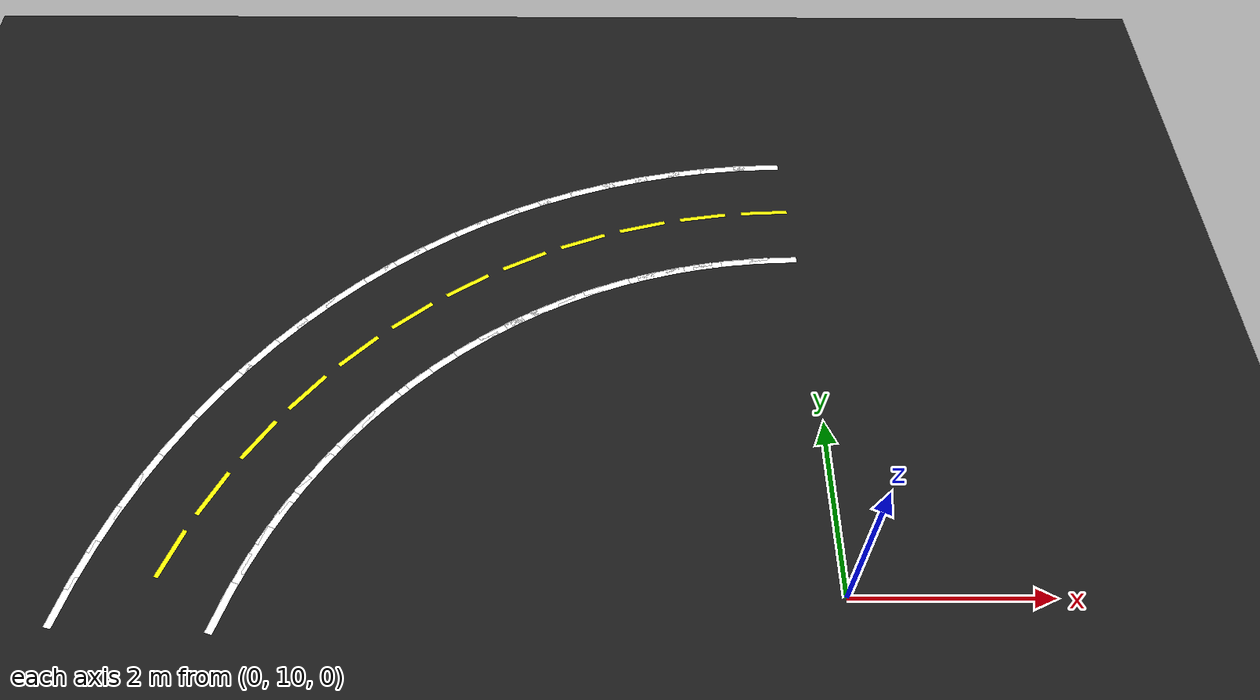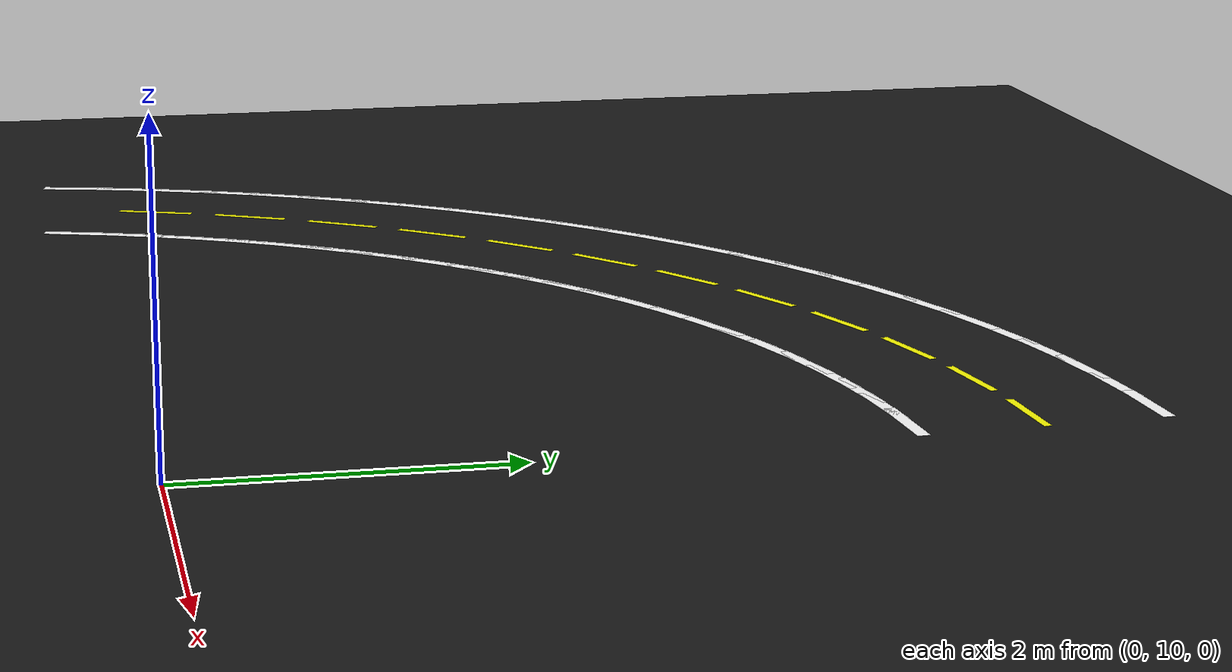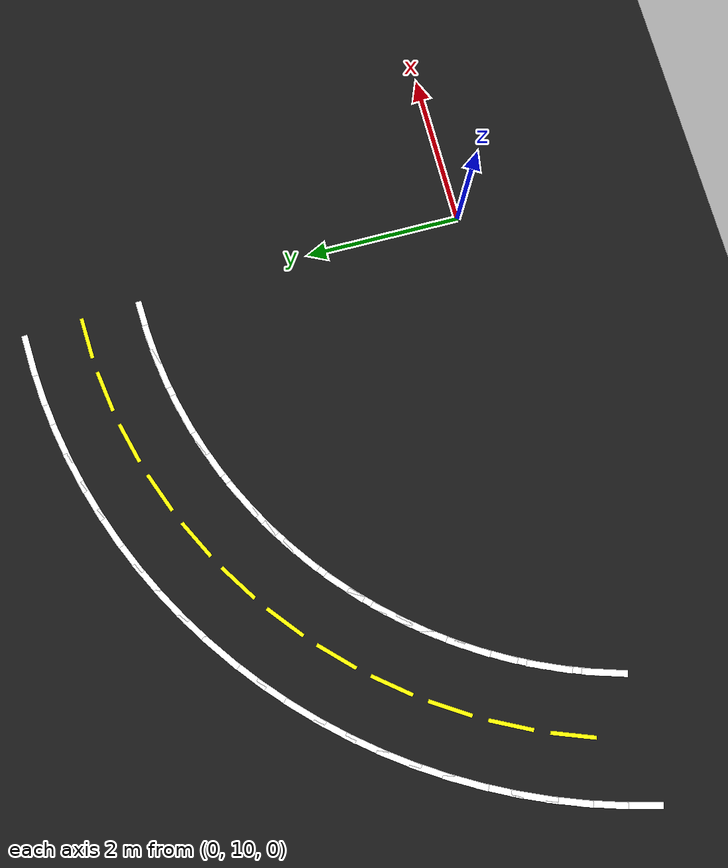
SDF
<sdf version="1.6">
 <world name="lane_world">
  <model name="ground">
   <static>true</static>
   <link name="link">
    <visual name="v">
     <geometry><plane><normal>0 0 1</normal><size>80 80</size></plane></geometry>
     <material><ambient>0.10 0.10 0.10 1</ambient><diffuse>0.10 0.10 0.10 1</diffuse></material>
    </visual>
    <collision name="c"><geometry><plane><normal>0 0 1</normal><size>80 80</size></plane></geometry></collision>
   </link>
  </model>
  <model name="seg_0150">
   <static>true</static>
   <pose>-0.4090 15.7392 0.002 0 0 0.0528</pose>
   <link name="link">
    <visual name="v">
     <geometry><box><size>0.550 0.080 0.0020</size></box></geometry>
     <material><ambient>1 1 1 1</ambient><diffuse>1 1 1 1</diffuse></material>
    </visual>
   </link>
  </model>
  <model name="seg_0151">
   <static>true</static>
   <pose>-0.3298 14.2413 0.002 0 0 0.0528</pose>
   <link name="link">
    <visual name="v">
     <geometry><box><size>0.550 0.080 0.0020</size></box></geometry>
     <material><ambient>1 1 1 1</ambient><diffuse>1 1 1 1</diffuse></material>
    </visual>
   </link>
  </model>
  <model name="seg_0152">
   <static>true</static>
   <pose>-0.3694 14.9902 0.002 0 0 0.0528</pose>
   <link name="link">
    <visual name="v">
     <geometry><box><size>0.550 0.05 0.0020</size></box></geometry>
     <material><ambient>1 1 0 1</ambient><diffuse>1 1 0 1</diffuse></material>
    </visual>
   </link>
  </model>
  <model name="seg_0153">
   <static>true</static>
   <pose>-0.8169 15.7068 0.002 0 0 0.1056</pose>
   <link name="link">
    <visual name="v">
     <geometry><box><size>0.550 0.080 0.0020</size></box></geometry>
     <material><ambient>1 1 1 1</ambient><diffuse>1 1 1 1</diffuse></material>
    </visual>
   </link>
  </model>
  <model name="seg_0154">
   <static>true</static>
   <pose>-0.6588 14.2152 0.002 0 0 0.1056</pose>
   <link name="link">
    <visual name="v">
     <geometry><box><size>0.550 0.080 0.0020</size></box></geometry>
     <material><ambient>1 1 1 1</ambient><diffuse>1 1 1 1</diffuse></material>
    </visual>
   </link>
  </model>
  <model name="seg_0155">
   <static>true</static>
   <pose>-1.2225 15.6530 0.002 0 0 0.1584</pose>
   <link name="link">
    <visual name="v">
     <geometry><box><size>0.550 0.080 0.0020</size></box></geometry>
     <material><ambient>1 1 1 1</ambient><diffuse>1 1 1 1</diffuse></material>
    </visual>
   </link>
  </model>
  <model name="seg_0156">
   <static>true</static>
   <pose>-0.9859 14.1718 0.002 0 0 0.1584</pose>
   <link name="link">
    <visual name="v">
     <geometry><box><size>0.550 0.080 0.0020</size></box></geometry>
     <material><ambient>1 1 1 1</ambient><diffuse>1 1 1 1</diffuse></material>
    </visual>
   </link>
  </model>
  <model name="seg_0157">
   <static>true</static>
   <pose>-1.1042 14.9124 0.002 0 0 0.1584</pose>
   <link name="link">
    <visual name="v">
     <geometry><box><size>0.550 0.05 0.0020</size></box></geometry>
     <material><ambient>1 1 0 1</ambient><diffuse>1 1 0 1</diffuse></material>
    </visual>
   </link>
  </model>
  <model name="seg_0158">
   <static>true</static>
   <pose>-1.6247 15.5778 0.002 0 0 0.2112</pose>
   <link name="link">
    <visual name="v">
     <geometry><box><size>0.550 0.080 0.0020</size></box></geometry>
     <material><ambient>1 1 1 1</ambient><diffuse>1 1 1 1</diffuse></material>
    </visual>
   </link>
  </model>
  <model name="seg_0159">
   <static>true</static>
   <pose>-1.3102 14.1111 0.002 0 0 0.2112</pose>
   <link name="link">
    <visual name="v">
     <geometry><box><size>0.550 0.080 0.0020</size></box></geometry>
     <material><ambient>1 1 1 1</ambient><diffuse>1 1 1 1</diffuse></material>
    </visual>
   </link>
  </model>
  <model name="seg_0160">
   <static>true</static>
   <pose>-2.0223 15.4815 0.002 0 0 0.2640</pose>
   <link name="link">
    <visual name="v">
     <geometry><box><size>0.550 0.080 0.0020</size></box></geometry>
     <material><ambient>1 1 1 1</ambient><diffuse>1 1 1 1</diffuse></material>
    </visual>
   </link>
  </model>
  <model name="seg_0161">
   <static>true</static>
   <pose>-1.6309 14.0335 0.002 0 0 0.2640</pose>
   <link name="link">
    <visual name="v">
     <geometry><box><size>0.550 0.080 0.0020</size></box></geometry>
     <material><ambient>1 1 1 1</ambient><diffuse>1 1 1 1</diffuse></material>
    </visual>
   </link>
  </model>
  <model name="seg_0162">
   <static>true</static>
   <pose>-1.8266 14.7575 0.002 0 0 0.2640</pose>
   <link name="link">
    <visual name="v">
     <geometry><box><size>0.550 0.05 0.0020</size></box></geometry>
     <material><ambient>1 1 0 1</ambient><diffuse>1 1 0 1</diffuse></material>
    </visual>
   </link>
  </model>
  <model name="seg_0163">
   <static>true</static>
   <pose>-2.4143 15.3643 0.002 0 0 0.3168</pose>
   <link name="link">
    <visual name="v">
     <geometry><box><size>0.550 0.080 0.0020</size></box></geometry>
     <material><ambient>1 1 1 1</ambient><diffuse>1 1 1 1</diffuse></material>
    </visual>
   </link>
  </model>
  <model name="seg_0164">
   <static>true</static>
   <pose>-1.9470 13.9390 0.002 0 0 0.3168</pose>
   <link name="link">
    <visual name="v">
     <geometry><box><size>0.550 0.080 0.0020</size></box></geometry>
     <material><ambient>1 1 1 1</ambient><diffuse>1 1 1 1</diffuse></material>
    </visual>
   </link>
  </model>
  <model name="seg_0165">
   <static>true</static>
   <pose>-2.7996 15.2267 0.002 0 0 0.3696</pose>
   <link name="link">
    <visual name="v">
     <geometry><box><size>0.550 0.080 0.0020</size></box></geometry>
     <material><ambient>1 1 1 1</ambient><diffuse>1 1 1 1</diffuse></material>
    </visual>
   </link>
  </model>
  <model name="seg_0166">
   <static>true</static>
   <pose>-2.2578 13.8280 0.002 0 0 0.3696</pose>
   <link name="link">
    <visual name="v">
     <geometry><box><size>0.550 0.080 0.0020</size></box></geometry>
     <material><ambient>1 1 1 1</ambient><diffuse>1 1 1 1</diffuse></material>
    </visual>
   </link>
  </model>
  <model name="seg_0167">
   <static>true</static>
   <pose>-2.5287 14.5273 0.002 0 0 0.3696</pose>
   <link name="link">
    <visual name="v">
     <geometry><box><size>0.550 0.05 0.0020</size></box></geometry>
     <material><ambient>1 1 0 1</ambient><diffuse>1 1 0 1</diffuse></material>
    </visual>
   </link>
  </model>
  <model name="seg_0168">
   <static>true</static>
   <pose>-3.1771 15.0688 0.002 0 0 0.4224</pose>
   <link name="link">
    <visual name="v">
     <geometry><box><size>0.550 0.080 0.0020</size></box></geometry>
     <material><ambient>1 1 1 1</ambient><diffuse>1 1 1 1</diffuse></material>
    </visual>
   </link>
  </model>
  <model name="seg_0169">
   <static>true</static>
   <pose>-2.5622 13.7007 0.002 0 0 0.4224</pose>
   <link name="link">
    <visual name="v">
     <geometry><box><size>0.550 0.080 0.0020</size></box></geometry>
     <material><ambient>1 1 1 1</ambient><diffuse>1 1 1 1</diffuse></material>
    </visual>
   </link>
  </model>
  <model name="seg_0170">
   <static>true</static>
   <pose>-3.5457 14.8913 0.002 0 0 0.4752</pose>
   <link name="link">
    <visual name="v">
     <geometry><box><size>0.550 0.080 0.0020</size></box></geometry>
     <material><ambient>1 1 1 1</ambient><diffuse>1 1 1 1</diffuse></material>
    </visual>
   </link>
  </model>
  <model name="seg_0171">
   <static>true</static>
   <pose>-2.8595 13.5575 0.002 0 0 0.4752</pose>
   <link name="link">
    <visual name="v">
     <geometry><box><size>0.550 0.080 0.0020</size></box></geometry>
     <material><ambient>1 1 1 1</ambient><diffuse>1 1 1 1</diffuse></material>
    </visual>
   </link>
  </model>
  <model name="seg_0172">
   <static>true</static>
   <pose>-3.2026 14.2244 0.002 0 0 0.4752</pose>
   <link name="link">
    <visual name="v">
     <geometry><box><size>0.550 0.05 0.0020</size></box></geometry>
     <material><ambient>1 1 0 1</ambient><diffuse>1 1 0 1</diffuse></material>
    </visual>
   </link>
  </model>
  <model name="seg_0173">
   <static>true</static>
   <pose>-3.9045 14.6946 0.002 0 0 0.5280</pose>
   <link name="link">
    <visual name="v">
     <geometry><box><size>0.550 0.080 0.0020</size></box></geometry>
     <material><ambient>1 1 1 1</ambient><diffuse>1 1 1 1</diffuse></material>
    </visual>
   </link>
  </model>
  <model name="seg_0174">
   <static>true</static>
   <pose>-3.1488 13.3989 0.002 0 0 0.5280</pose>
   <link name="link">
    <visual name="v">
     <geometry><box><size>0.550 0.080 0.0020</size></box></geometry>
     <material><ambient>1 1 1 1</ambient><diffuse>1 1 1 1</diffuse></material>
    </visual>
   </link>
  </model>
  <model name="seg_0175">
   <static>true</static>
   <pose>-4.2524 14.4792 0.002 0 0 0.5808</pose>
   <link name="link">
    <visual name="v">
     <geometry><box><size>0.550 0.080 0.0020</size></box></geometry>
     <material><ambient>1 1 1 1</ambient><diffuse>1 1 1 1</diffuse></material>
    </visual>
   </link>
  </model>
  <model name="seg_0176">
   <static>true</static>
   <pose>-3.4293 13.2252 0.002 0 0 0.5808</pose>
   <link name="link">
    <visual name="v">
     <geometry><box><size>0.550 0.080 0.0020</size></box></geometry>
     <material><ambient>1 1 1 1</ambient><diffuse>1 1 1 1</diffuse></material>
    </visual>
   </link>
  </model>
  <model name="seg_0177">
   <static>true</static>
   <pose>-3.8408 13.8522 0.002 0 0 0.5808</pose>
   <link name="link">
    <visual name="v">
     <geometry><box><size>0.550 0.05 0.0020</size></box></geometry>
     <material><ambient>1 1 0 1</ambient><diffuse>1 1 0 1</diffuse></material>
    </visual>
   </link>
  </model>
  <model name="seg_0178">
   <static>true</static>
   <pose>-4.5884 14.2457 0.002 0 0 0.6336</pose>
   <link name="link">
    <visual name="v">
     <geometry><box><size>0.550 0.080 0.0020</size></box></geometry>
     <material><ambient>1 1 1 1</ambient><diffuse>1 1 1 1</diffuse></material>
    </visual>
   </link>
  </model>
  <model name="seg_0179">
   <static>true</static>
   <pose>-3.7003 13.0369 0.002 0 0 0.6336</pose>
   <link name="link">
    <visual name="v">
     <geometry><box><size>0.550 0.080 0.0020</size></box></geometry>
     <material><ambient>1 1 1 1</ambient><diffuse>1 1 1 1</diffuse></material>
    </visual>
   </link>
  </model>
  <model name="seg_0180">
   <static>true</static>
   <pose>-4.9116 13.9949 0.002 0 0 0.6864</pose>
   <link name="link">
    <visual name="v">
     <geometry><box><size>0.550 0.080 0.0020</size></box></geometry>
     <material><ambient>1 1 1 1</ambient><diffuse>1 1 1 1</diffuse></material>
    </visual>
   </link>
  </model>
  <model name="seg_0181">
   <static>true</static>
   <pose>-3.9610 12.8346 0.002 0 0 0.6864</pose>
   <link name="link">
    <visual name="v">
     <geometry><box><size>0.550 0.080 0.0020</size></box></geometry>
     <material><ambient>1 1 1 1</ambient><diffuse>1 1 1 1</diffuse></material>
    </visual>
   </link>
  </model>
  <model name="seg_0182">
   <static>true</static>
   <pose>-4.4363 13.4147 0.002 0 0 0.6864</pose>
   <link name="link">
    <visual name="v">
     <geometry><box><size>0.550 0.05 0.0020</size></box></geometry>
     <material><ambient>1 1 0 1</ambient><diffuse>1 1 0 1</diffuse></material>
    </visual>
   </link>
  </model>
  <model name="seg_0183">
   <static>true</static>
   <pose>-5.2211 13.7273 0.002 0 0 0.7392</pose>
   <link name="link">
    <visual name="v">
     <geometry><box><size>0.550 0.080 0.0020</size></box></geometry>
     <material><ambient>1 1 1 1</ambient><diffuse>1 1 1 1</diffuse></material>
    </visual>
   </link>
  </model>
  <model name="seg_0184">
   <static>true</static>
   <pose>-4.2106 12.6188 0.002 0 0 0.7392</pose>
   <link name="link">
    <visual name="v">
     <geometry><box><size>0.550 0.080 0.0020</size></box></geometry>
     <material><ambient>1 1 1 1</ambient><diffuse>1 1 1 1</diffuse></material>
    </visual>
   </link>
  </model>
  <model name="seg_0185">
   <static>true</static>
   <pose>-5.5161 13.4438 0.002 0 0 0.7920</pose>
   <link name="link">
    <visual name="v">
     <geometry><box><size>0.550 0.080 0.0020</size></box></geometry>
     <material><ambient>1 1 1 1</ambient><diffuse>1 1 1 1</diffuse></material>
    </visual>
   </link>
  </model>
  <model name="seg_0186">
   <static>true</static>
   <pose>-4.4485 12.3902 0.002 0 0 0.7920</pose>
   <link name="link">
    <visual name="v">
     <geometry><box><size>0.550 0.080 0.0020</size></box></geometry>
     <material><ambient>1 1 1 1</ambient><diffuse>1 1 1 1</diffuse></material>
    </visual>
   </link>
  </model>
  <model name="seg_0187">
   <static>true</static>
   <pose>-4.9823 12.9170 0.002 0 0 0.7920</pose>
   <link name="link">
    <visual name="v">
     <geometry><box><size>0.550 0.05 0.0020</size></box></geometry>
     <material><ambient>1 1 0 1</ambient><diffuse>1 1 0 1</diffuse></material>
    </visual>
   </link>
  </model>
  <model name="seg_0188">
   <static>true</static>
   <pose>-5.7957 13.1451 0.002 0 0 0.8448</pose>
   <link name="link">
    <visual name="v">
     <geometry><box><size>0.550 0.080 0.0020</size></box></geometry>
     <material><ambient>1 1 1 1</ambient><diffuse>1 1 1 1</diffuse></material>
    </visual>
   </link>
  </model>
  <model name="seg_0189">
   <static>true</static>
   <pose>-4.6740 12.1493 0.002 0 0 0.8448</pose>
   <link name="link">
    <visual name="v">
     <geometry><box><size>0.550 0.080 0.0020</size></box></geometry>
     <material><ambient>1 1 1 1</ambient><diffuse>1 1 1 1</diffuse></material>
    </visual>
   </link>
  </model>
  <model name="seg_0190">
   <static>true</static>
   <pose>-6.0592 12.8320 0.002 0 0 0.8976</pose>
   <link name="link">
    <visual name="v">
     <geometry><box><size>0.550 0.080 0.0020</size></box></geometry>
     <material><ambient>1 1 1 1</ambient><diffuse>1 1 1 1</diffuse></material>
    </visual>
   </link>
  </model>
  <model name="seg_0191">
   <static>true</static>
   <pose>-4.8864 11.8968 0.002 0 0 0.8976</pose>
   <link name="link">
    <visual name="v">
     <geometry><box><size>0.550 0.080 0.0020</size></box></geometry>
     <material><ambient>1 1 1 1</ambient><diffuse>1 1 1 1</diffuse></material>
    </visual>
   </link>
  </model>
  <model name="seg_0192">
   <static>true</static>
   <pose>-5.4728 12.3644 0.002 0 0 0.8976</pose>
   <link name="link">
    <visual name="v">
     <geometry><box><size>0.550 0.05 0.0020</size></box></geometry>
     <material><ambient>1 1 0 1</ambient><diffuse>1 1 0 1</diffuse></material>
    </visual>
   </link>
  </model>
  <model name="seg_0193">
   <static>true</static>
   <pose>-6.3058 12.5055 0.002 0 0 0.9504</pose>
   <link name="link">
    <visual name="v">
     <geometry><box><size>0.550 0.080 0.0020</size></box></geometry>
     <material><ambient>1 1 1 1</ambient><diffuse>1 1 1 1</diffuse></material>
    </visual>
   </link>
  </model>
  <model name="seg_0194">
   <static>true</static>
   <pose>-5.0853 11.6335 0.002 0 0 0.9504</pose>
   <link name="link">
    <visual name="v">
     <geometry><box><size>0.550 0.080 0.0020</size></box></geometry>
     <material><ambient>1 1 1 1</ambient><diffuse>1 1 1 1</diffuse></material>
    </visual>
   </link>
  </model>
  <model name="seg_0195">
   <static>true</static>
   <pose>-6.5348 12.1665 0.002 0 0 1.0032</pose>
   <link name="link">
    <visual name="v">
     <geometry><box><size>0.550 0.080 0.0020</size></box></geometry>
     <material><ambient>1 1 1 1</ambient><diffuse>1 1 1 1</diffuse></material>
    </visual>
   </link>
  </model>
  <model name="seg_0196">
   <static>true</static>
   <pose>-5.2700 11.3601 0.002 0 0 1.0032</pose>
   <link name="link">
    <visual name="v">
     <geometry><box><size>0.550 0.080 0.0020</size></box></geometry>
     <material><ambient>1 1 1 1</ambient><diffuse>1 1 1 1</diffuse></material>
    </visual>
   </link>
  </model>
  <model name="seg_0197">
   <static>true</static>
   <pose>-5.9024 11.7633 0.002 0 0 1.0032</pose>
   <link name="link">
    <visual name="v">
     <geometry><box><size>0.550 0.05 0.0020</size></box></geometry>
     <material><ambient>1 1 0 1</ambient><diffuse>1 1 0 1</diffuse></material>
    </visual>
   </link>
  </model>
  <model name="seg_0198">
   <static>true</static>
   <pose>-6.7455 11.8158 0.002 0 0 1.0560</pose>
   <link name="link">
    <visual name="v">
     <geometry><box><size>0.550 0.080 0.0020</size></box></geometry>
     <material><ambient>1 1 1 1</ambient><diffuse>1 1 1 1</diffuse></material>
    </visual>
   </link>
  </model>
  <model name="seg_0199">
   <static>true</static>
   <pose>-5.4399 11.0772 0.002 0 0 1.0560</pose>
   <link name="link">
    <visual name="v">
     <geometry><box><size>0.550 0.080 0.0020</size></box></geometry>
     <material><ambient>1 1 1 1</ambient><diffuse>1 1 1 1</diffuse></material>
    </visual>
   </link>
  </model>
  <model name="seg_0200">
   <static>true</static>
   <pose>-6.9375 11.4545 0.002 0 0 1.1088</pose>
   <link name="link">
    <visual name="v">
     <geometry><box><size>0.550 0.080 0.0020</size></box></geometry>
     <material><ambient>1 1 1 1</ambient><diffuse>1 1 1 1</diffuse></material>
    </visual>
   </link>
  </model>
  <model name="seg_0201">
   <static>true</static>
   <pose>-5.5948 10.7859 0.002 0 0 1.1088</pose>
   <link name="link">
    <visual name="v">
     <geometry><box><size>0.550 0.080 0.0020</size></box></geometry>
     <material><ambient>1 1 1 1</ambient><diffuse>1 1 1 1</diffuse></material>
    </visual>
   </link>
  </model>
  <model name="seg_0202">
   <static>true</static>
   <pose>-6.2661 11.1202 0.002 0 0 1.1088</pose>
   <link name="link">
    <visual name="v">
     <geometry><box><size>0.550 0.05 0.0020</size></box></geometry>
     <material><ambient>1 1 0 1</ambient><diffuse>1 1 0 1</diffuse></material>
    </visual>
   </link>
  </model>
  <model name="seg_0203">
   <static>true</static>
   <pose>-7.1102 11.0835 0.002 0 0 1.1616</pose>
   <link name="link">
    <visual name="v">
     <geometry><box><size>0.550 0.080 0.0020</size></box></geometry>
     <material><ambient>1 1 1 1</ambient><diffuse>1 1 1 1</diffuse></material>
    </visual>
   </link>
  </model>
  <model name="seg_0204">
   <static>true</static>
   <pose>-5.7340 10.4867 0.002 0 0 1.1616</pose>
   <link name="link">
    <visual name="v">
     <geometry><box><size>0.550 0.080 0.0020</size></box></geometry>
     <material><ambient>1 1 1 1</ambient><diffuse>1 1 1 1</diffuse></material>
    </visual>
   </link>
  </model>
  <model name="seg_0205">
   <static>true</static>
   <pose>-7.2630 10.7040 0.002 0 0 1.2144</pose>
   <link name="link">
    <visual name="v">
     <geometry><box><size>0.550 0.080 0.0020</size></box></geometry>
     <material><ambient>1 1 1 1</ambient><diffuse>1 1 1 1</diffuse></material>
    </visual>
   </link>
  </model>
  <model name="seg_0206">
   <static>true</static>
   <pose>-5.8572 10.1806 0.002 0 0 1.2144</pose>
   <link name="link">
    <visual name="v">
     <geometry><box><size>0.550 0.080 0.0020</size></box></geometry>
     <material><ambient>1 1 1 1</ambient><diffuse>1 1 1 1</diffuse></material>
    </visual>
   </link>
  </model>
  <model name="seg_0207">
   <static>true</static>
   <pose>-6.5601 10.4423 0.002 0 0 1.2144</pose>
   <link name="link">
    <visual name="v">
     <geometry><box><size>0.550 0.05 0.0020</size></box></geometry>
     <material><ambient>1 1 0 1</ambient><diffuse>1 1 0 1</diffuse></material>
    </visual>
   </link>
  </model>
  <model name="seg_0208">
   <static>true</static>
   <pose>-7.3956 10.3169 0.002 0 0 1.2672</pose>
   <link name="link">
    <visual name="v">
     <geometry><box><size>0.550 0.080 0.0020</size></box></geometry>
     <material><ambient>1 1 1 1</ambient><diffuse>1 1 1 1</diffuse></material>
    </visual>
   </link>
  </model>
  <model name="seg_0209">
   <static>true</static>
   <pose>-5.9642 9.8685 0.002 0 0 1.2672</pose>
   <link name="link">
    <visual name="v">
     <geometry><box><size>0.550 0.080 0.0020</size></box></geometry>
     <material><ambient>1 1 1 1</ambient><diffuse>1 1 1 1</diffuse></material>
    </visual>
   </link>
  </model>
  <model name="seg_0210">
   <static>true</static>
   <pose>-7.5075 9.9234 0.002 0 0 1.3200</pose>
   <link name="link">
    <visual name="v">
     <geometry><box><size>0.550 0.080 0.0020</size></box></geometry>
     <material><ambient>1 1 1 1</ambient><diffuse>1 1 1 1</diffuse></material>
    </visual>
   </link>
  </model>
 </world>
</sdf>
